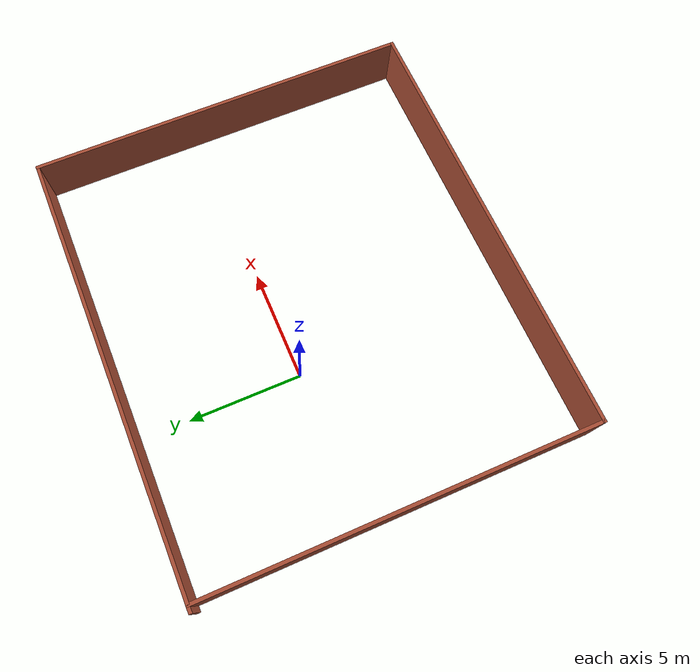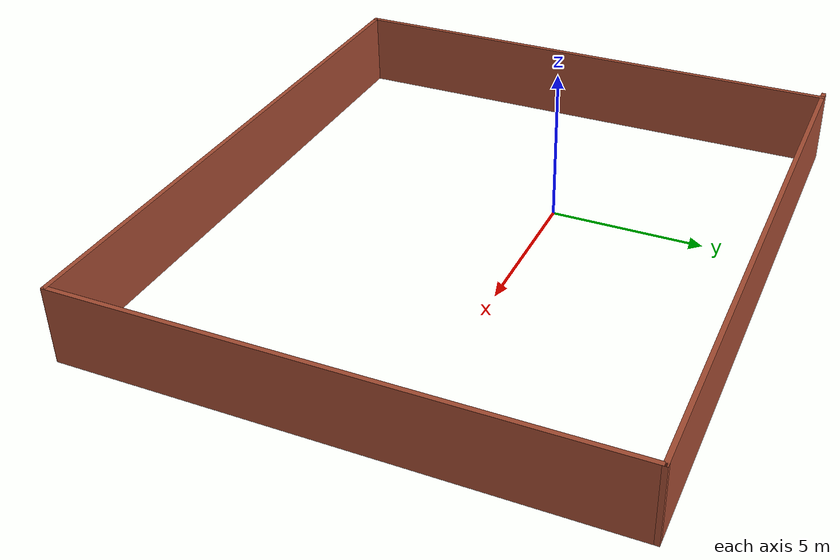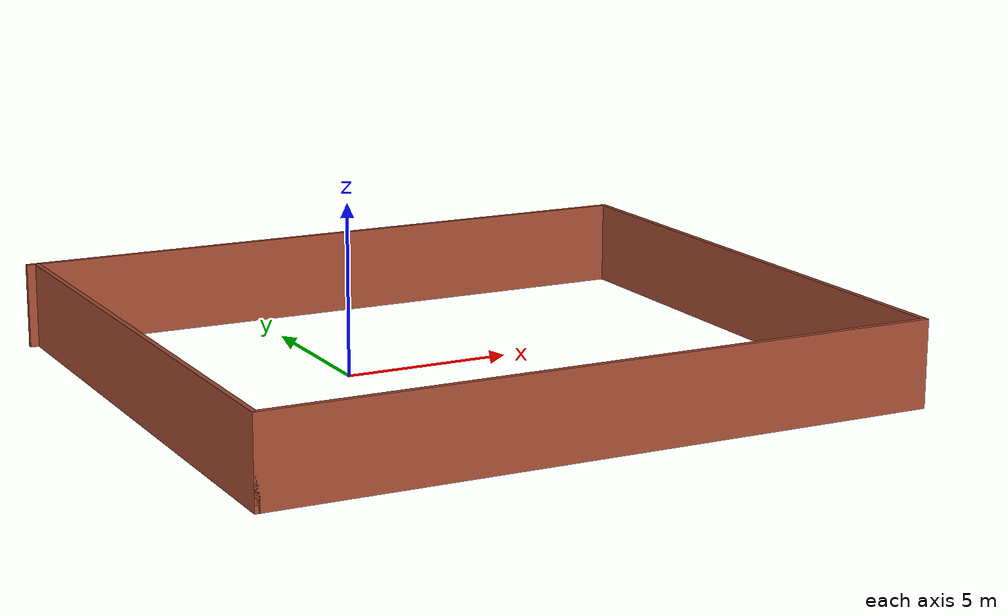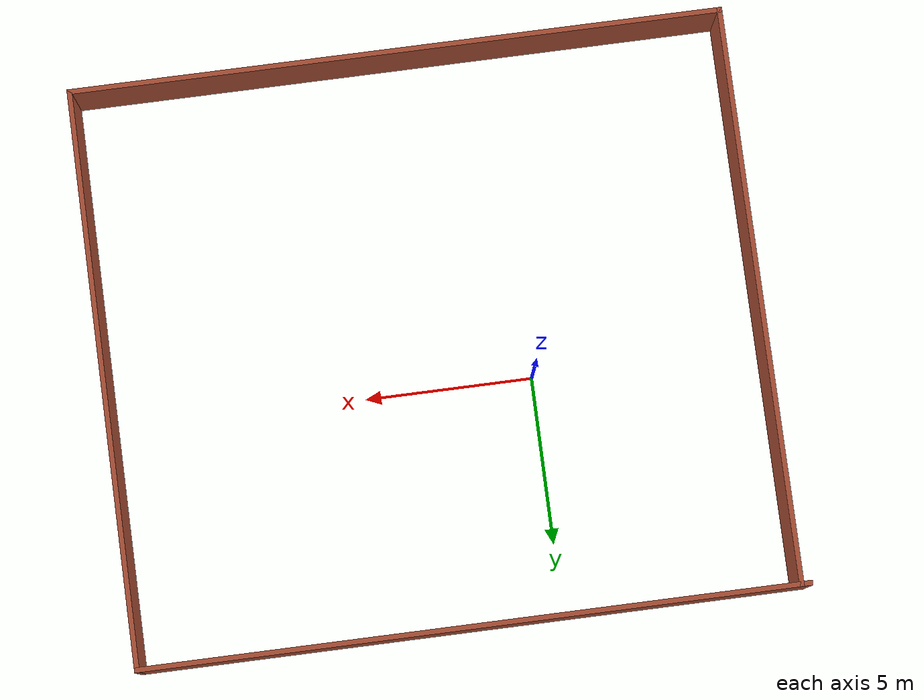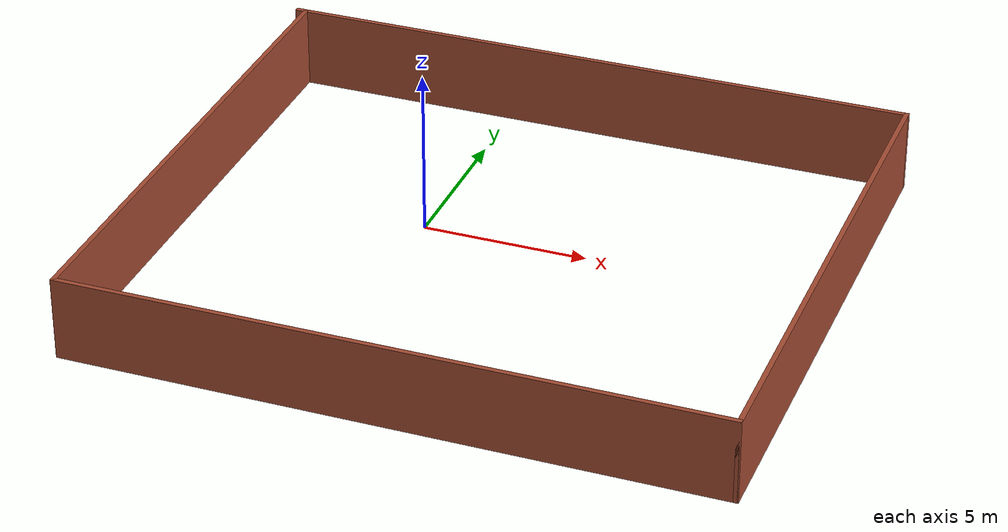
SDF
<?xml version='1.0'?>
<sdf version='1.7'>
  <model name='Untitled'>
    <pose>2.71171 -1.35414 0 0 -0 0</pose>
    <link name='Wall_5'>
      <collision name='Wall_5_Collision'>
        <geometry>
          <box>
            <size>17.25 0.15 2.5</size>
          </box>
        </geometry>
        <pose>0 0 1.25 0 -0 0</pose>
      </collision>
      <visual name='Wall_5_Visual'>
        <pose>0 0 1.25 0 -0 0</pose>
        <geometry>
          <box>
            <size>17.25 0.15 2.5</size>
          </box>
        </geometry>
        <material>
          <script>
            <uri>file://media/materials/scripts/gazebo.material</uri>
            <name>Gazebo/Bricks</name>
          </script>
          <ambient>1 1 1 1</ambient>
        </material>
        <meta>
          <layer>0</layer>
        </meta>
      </visual>
      <pose>-9.55 -0 0 0 -0 -1.5708</pose>
    </link>
    <link name='Wall_6'>
      <collision name='Wall_6_Collision'>
        <geometry>
          <box>
            <size>19.5 0.15 2.5</size>
          </box>
        </geometry>
        <pose>0 0 1.25 0 -0 0</pose>
      </collision>
      <visual name='Wall_6_Visual'>
        <pose>0 0 1.25 0 -0 0</pose>
        <geometry>
          <box>
            <size>19.5 0.15 2.5</size>
          </box>
        </geometry>
        <material>
          <script>
            <uri>file://media/materials/scripts/gazebo.material</uri>
            <name>Gazebo/Bricks</name>
          </script>
          <ambient>1 1 1 1</ambient>
        </material>
        <meta>
          <layer>0</layer>
        </meta>
      </visual>
      <pose>0.125 -8.55 0 0 -0 0</pose>
    </link>
    <link name='Wall_7'>
      <collision name='Wall_7_Collision'>
        <geometry>
          <box>
            <size>17.25 0.15 2.5</size>
          </box>
        </geometry>
        <pose>0 0 1.25 0 -0 0</pose>
      </collision>
      <visual name='Wall_7_Visual'>
        <pose>0 0 1.25 0 -0 0</pose>
        <geometry>
          <box>
            <size>17.25 0.15 2.5</size>
          </box>
        </geometry>
        <material>
          <script>
            <uri>file://media/materials/scripts/gazebo.material</uri>
            <name>Gazebo/Bricks</name>
          </script>
          <ambient>1 1 1 1</ambient>
        </material>
        <meta>
          <layer>0</layer>
        </meta>
      </visual>
      <pose>9.8 -0 0 0 -0 1.5708</pose>
    </link>
    <link name='Wall_8'>
      <collision name='Wall_8_Collision'>
        <geometry>
          <box>
            <size>19.75 0.15 2.5</size>
          </box>
        </geometry>
        <pose>0 0 1.25 0 -0 0</pose>
      </collision>
      <visual name='Wall_8_Visual'>
        <pose>0 0 1.25 0 -0 0</pose>
        <geometry>
          <box>
            <size>19.75 0.15 2.5</size>
          </box>
        </geometry>
        <material>
          <script>
            <uri>file://media/materials/scripts/gazebo.material</uri>
            <name>Gazebo/Bricks</name>
          </script>
          <ambient>1 1 1 1</ambient>
        </material>
        <meta>
          <layer>0</layer>
        </meta>
      </visual>
      <pose>-0 8.55 0 0 -0 3.14159</pose>
    </link>
    <static>1</static>
  </model>
</sdf>
